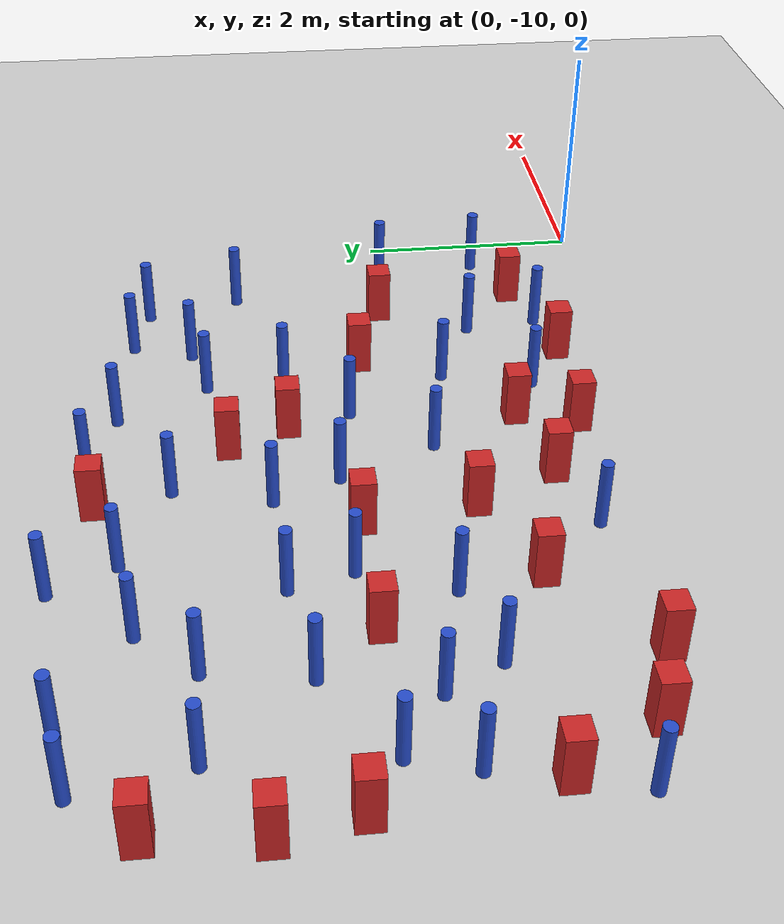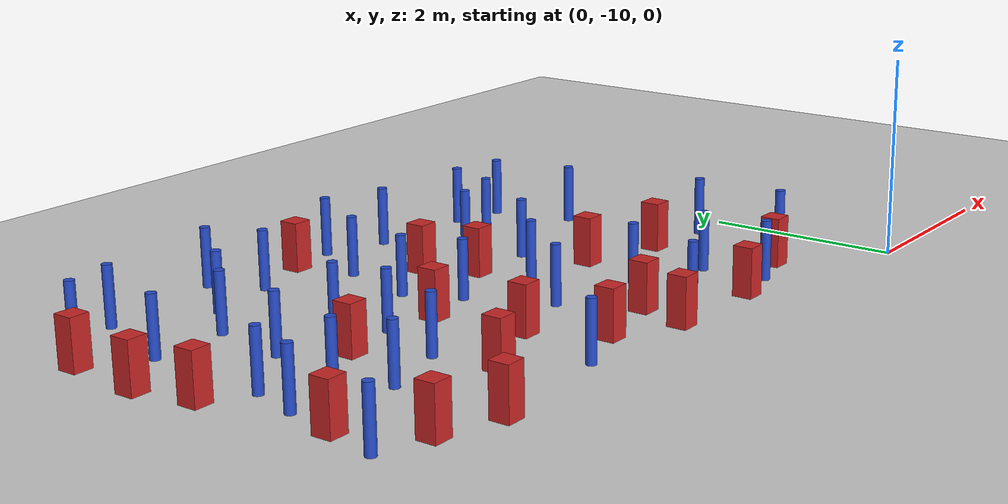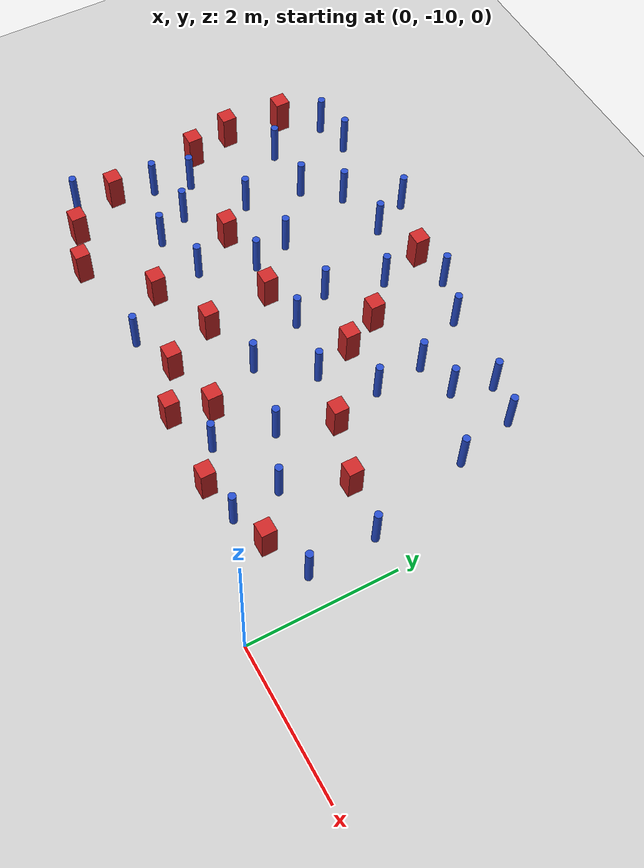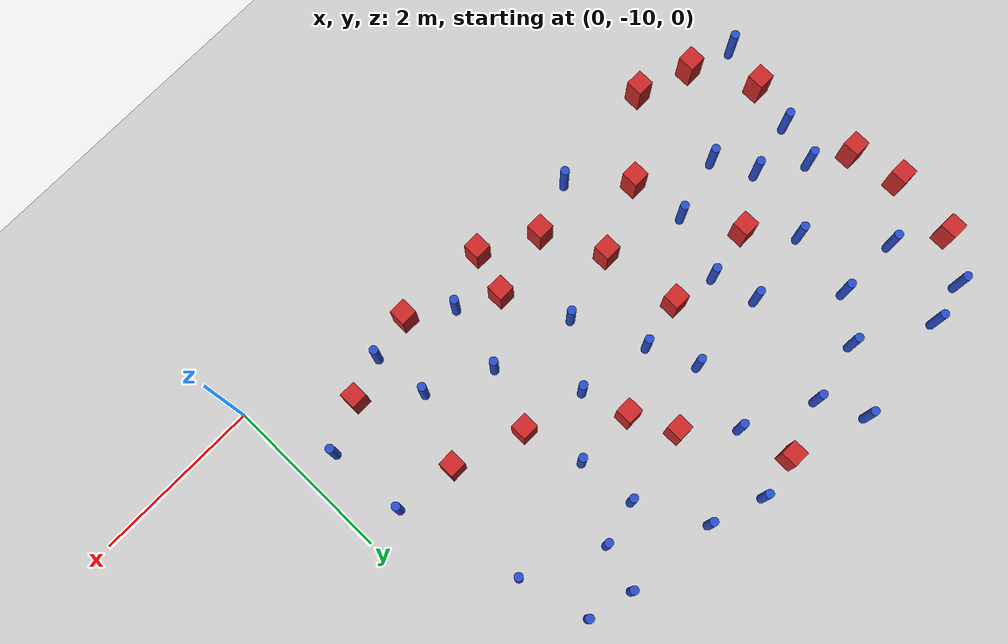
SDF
<sdf version="1.6">
 <world name="default">
  <model name="ground_plane">
   <static>1</static>
   <link name="link">
    <collision name="collision">
     <geometry><plane><normal>0 0 1</normal><size>100 100</size></plane></geometry>
     <surface><friction><ode><mu>100</mu><mu2>50</mu2></ode></friction></surface>
    </collision>
    <visual name="visual">
     <cast_shadows>0</cast_shadows>
     <geometry><plane><normal>0 0 1</normal><size>100 100</size></plane></geometry>
     <material>
      <ambient>1.0 1.0 1.0 1.0</ambient>
      <diffuse>0.8 0.8 0.8 1.0</diffuse>
      <specular>0.01 0.01 0.01 1.000000</specular>
     </material>
    </visual>
   </link>
  </model>
  <model name="pole_obstacle3">
   <static>true</static>
   <pose>-5.2181728807 -5.75392112804 7.38925637345e-09 -8.47170692796e-08 1.24976764786e-08 -1.74513093032e-07</pose>
   <link name="link">
    <pose>0 0 0.3 0 -0 0</pose>
    <inertial>
     <mass>1</mass>
     <inertia><ixx>0.145833</ixx><ixy>0</ixy><ixz>0</ixz><iyy>0.145833</iyy><iyz>0</iyz><izz>0.125</izz></inertia>
    </inertial>
    <collision name="collision">
     <geometry><cylinder><radius>0.05</radius><length>.6</length></cylinder></geometry>
    </collision>
    <visual name="visual">
     <geometry><cylinder><radius>0.05</radius><length>.6</length></cylinder></geometry>
     <material>
      <script><name>Gazebo/Blue</name><uri>file://media/materials/scripts/gazebo.material</uri></script>
     </material>
    </visual>
   </link>
  </model>
  <model name="square_post_obstacle14">
   <static>true</static>
   <pose>-3.72956606277 -9.08440619244 1.91545236811e-07 -7.35059704564e-06 1.12565212e-07 2.39332434364e-05</pose>
   <link name="link">
    <pose>0 0 0.25 0 -0 0</pose>
    <inertial>
     <mass>100</mass>
     <inertia>
      <ixx>0.166667</ixx>
      <ixy>0</ixy>
      <ixz>0</ixz>
      <iyy>0.166667</iyy>
      <iyz>0</iyz>
      <izz>0.166667</izz>
     </inertia>
    </inertial>
    <collision name="collision"><geometry><box><size>.2 .2 .5</size></box></geometry></collision>
    <visual name="visual">
     <geometry><box><size>.2 .2 .5</size></box></geometry>
     <material>
      <script><name>Gazebo/Red</name><uri>file://media/materials/scripts/gazebo.material</uri></script>
     </material>
    </visual>
   </link>
  </model>
  <model name="pole_obstacle9">
   <static>true</static>
   <pose>-1.06666744541 -5.77174144234 7.38925637345e-09 -8.47170692799e-08 1.24976765033e-08 -1.74513093018e-07</pose>
   <link name="link">
    <pose>0 0 0.3 0 -0 0</pose>
    <inertial>
     <mass>1</mass>
     <inertia><ixx>0.145833</ixx><ixy>0</ixy><ixz>0</ixz><iyy>0.145833</iyy><iyz>0</iyz><izz>0.125</izz></inertia>
    </inertial>
    <collision name="collision">
     <geometry><cylinder><radius>0.05</radius><length>.6</length></cylinder></geometry>
    </collision>
    <visual name="visual">
     <geometry><cylinder><radius>0.05</radius><length>.6</length></cylinder></geometry>
     <material>
      <script><name>Gazebo/Blue</name><uri>file://media/materials/scripts/gazebo.material</uri></script>
     </material>
    </visual>
   </link>
  </model>
  <model name="pole_obstacle19">
   <static>true</static>
   <pose>-1.47499445884 -9.38234611123 7.38925637345e-09 -8.47170692798e-08 1.24976764881e-08 -1.74513093027e-07</pose>
   <link name="link">
    <pose>0 0 0.3 0 -0 0</pose>
    <inertial>
     <mass>1</mass>
     <inertia><ixx>0.145833</ixx><ixy>0</ixy><ixz>0</ixz><iyy>0.145833</iyy><iyz>0</iyz><izz>0.125</izz></inertia>
    </inertial>
    <collision name="collision">
     <geometry><cylinder><radius>0.05</radius><length>.6</length></cylinder></geometry>
    </collision>
    <visual name="visual">
     <geometry><cylinder><radius>0.05</radius><length>.6</length></cylinder></geometry>
     <material>
      <script><name>Gazebo/Blue</name><uri>file://media/materials/scripts/gazebo.material</uri></script>
     </material>
    </visual>
   </link>
  </model>
  <model name="pole_obstacle27">
   <static>true</static>
   <pose>-6.37845777477 -6.20743006333 7.38925637345e-09 -8.47170692796e-08 1.24976764786e-08 -1.74513093032e-07</pose>
   <link name="link">
    <pose>0 0 0.3 0 -0 0</pose>
    <inertial>
     <mass>1</mass>
     <inertia><ixx>0.145833</ixx><ixy>0</ixy><ixz>0</ixz><iyy>0.145833</iyy><iyz>0</iyz><izz>0.125</izz></inertia>
    </inertial>
    <collision name="collision">
     <geometry><cylinder><radius>0.05</radius><length>.6</length></cylinder></geometry>
    </collision>
    <visual name="visual">
     <geometry><cylinder><radius>0.05</radius><length>.6</length></cylinder></geometry>
     <material>
      <script><name>Gazebo/Blue</name><uri>file://media/materials/scripts/gazebo.material</uri></script>
     </material>
    </visual>
   </link>
  </model>
  <model name="pole_obstacle28">
   <static>true</static>
   <pose>-0.473915851841 -8.02569858146 7.38925637345e-09 -8.47170692807e-08 1.24976765478e-08 -1.74513093005e-07</pose>
   <link name="link">
    <pose>0 0 0.3 0 -0 0</pose>
    <inertial>
     <mass>1</mass>
     <inertia><ixx>0.145833</ixx><ixy>0</ixy><ixz>0</ixz><iyy>0.145833</iyy><iyz>0</iyz><izz>0.125</izz></inertia>
    </inertial>
    <collision name="collision">
     <geometry><cylinder><radius>0.05</radius><length>.6</length></cylinder></geometry>
    </collision>
    <visual name="visual">
     <geometry><cylinder><radius>0.05</radius><length>.6</length></cylinder></geometry>
     <material>
      <script><name>Gazebo/Blue</name><uri>file://media/materials/scripts/gazebo.material</uri></script>
     </material>
    </visual>
   </link>
  </model>
  <model name="pole_obstacle36">
   <static>true</static>
   <pose>-4.71889049196 -7.36775100137 7.38925637345e-09 -8.47170692796e-08 1.24976764786e-08 -1.74513093032e-07</pose>
   <link name="link">
    <pose>0 0 0.3 0 -0 0</pose>
    <inertial>
     <mass>1</mass>
     <inertia><ixx>0.145833</ixx><ixy>0</ixy><ixz>0</ixz><iyy>0.145833</iyy><iyz>0</iyz><izz>0.125</izz></inertia>
    </inertial>
    <collision name="collision">
     <geometry><cylinder><radius>0.05</radius><length>.6</length></cylinder></geometry>
    </collision>
    <visual name="visual">
     <geometry><cylinder><radius>0.05</radius><length>.6</length></cylinder></geometry>
     <material>
      <script><name>Gazebo/Blue</name><uri>file://media/materials/scripts/gazebo.material</uri></script>
     </material>
    </visual>
   </link>
  </model>
  <model name="pole_obstacle40">
   <static>true</static>
   <pose>-4.35141248358 -9.31326337772 7.38925637345e-09 -8.471706928e-08 1.24976765081e-08 -1.74513093015e-07</pose>
   <link name="link">
    <pose>0 0 0.3 0 -0 0</pose>
    <inertial>
     <mass>1</mass>
     <inertia><ixx>0.145833</ixx><ixy>0</ixy><ixz>0</ixz><iyy>0.145833</iyy><iyz>0</iyz><izz>0.125</izz></inertia>
    </inertial>
    <collision name="collision">
     <geometry><cylinder><radius>0.05</radius><length>.6</length></cylinder></geometry>
    </collision>
    <visual name="visual">
     <geometry><cylinder><radius>0.05</radius><length>.6</length></cylinder></geometry>
     <material>
      <script><name>Gazebo/Blue</name><uri>file://media/materials/scripts/gazebo.material</uri></script>
     </material>
    </visual>
   </link>
  </model>
  <model name="square_post_obstacle40">
   <static>true</static>
   <pose>-5.70633287363 -9.45097368055 1.91545236811e-07 -7.35059704564e-06 1.12565212e-07 2.39332434364e-05</pose>
   <link name="link">
    <pose>0 0 0.25 0 -0 0</pose>
    <inertial>
     <mass>100</mass>
     <inertia>
      <ixx>0.166667</ixx>
      <ixy>0</ixy>
      <ixz>0</ixz>
      <iyy>0.166667</iyy>
      <iyz>0</iyz>
      <izz>0.166667</izz>
     </inertia>
    </inertial>
    <collision name="collision"><geometry><box><size>.2 .2 .5</size></box></geometry></collision>
    <visual name="visual">
     <geometry><box><size>.2 .2 .5</size></box></geometry>
     <material>
      <script><name>Gazebo/Red</name><uri>file://media/materials/scripts/gazebo.material</uri></script>
     </material>
    </visual>
   </link>
  </model>
  <model name="pole_obstacle44">
   <static>true</static>
   <pose>-2.21537043636 -6.97621518955 7.38925637345e-09 -8.47170692798e-08 1.24976765033e-08 -1.74513093019e-07</pose>
   <link name="link">
    <pose>0 0 0.3 0 -0 0</pose>
    <inertial>
     <mass>1</mass>
     <inertia><ixx>0.145833</ixx><ixy>0</ixy><ixz>0</ixz><iyy>0.145833</iyy><iyz>0</iyz><izz>0.125</izz></inertia>
    </inertial>
    <collision name="collision">
     <geometry><cylinder><radius>0.05</radius><length>.6</length></cylinder></geometry>
    </collision>
    <visual name="visual">
     <geometry><cylinder><radius>0.05</radius><length>.6</length></cylinder></geometry>
     <material>
      <script><name>Gazebo/Blue</name><uri>file://media/materials/scripts/gazebo.material</uri></script>
     </material>
    </visual>
   </link>
  </model>
  <model name="square_post_obstacle47">
   <static>true</static>
   <pose>-1.20645597106 -7.93192119043 1.91545236811e-07 -7.35059704564e-06 1.12565212e-07 2.39332434364e-05</pose>
   <link name="link">
    <pose>0 0 0.25 0 -0 0</pose>
    <inertial>
     <mass>100</mass>
     <inertia>
      <ixx>0.166667</ixx>
      <ixy>0</ixy>
      <ixz>0</ixz>
      <iyy>0.166667</iyy>
      <iyz>0</iyz>
      <izz>0.166667</izz>
     </inertia>
    </inertial>
    <collision name="collision"><geometry><box><size>.2 .2 .5</size></box></geometry></collision>
    <visual name="visual">
     <geometry><box><size>.2 .2 .5</size></box></geometry>
     <material>
      <script><name>Gazebo/Red</name><uri>file://media/materials/scripts/gazebo.material</uri></script>
     </material>
    </visual>
   </link>
  </model>
  <model name="pole_obstacle48">
   <static>true</static>
   <pose>-5.73225735683 -7.00149802437 7.38925637345e-09 -8.47170692796e-08 1.24976764786e-08 -1.74513093032e-07</pose>
   <link name="link">
    <pose>0 0 0.3 0 -0 0</pose>
    <inertial>
     <mass>1</mass>
     <inertia><ixx>0.145833</ixx><ixy>0</ixy><ixz>0</ixz><iyy>0.145833</iyy><iyz>0</iyz><izz>0.125</izz></inertia>
    </inertial>
    <collision name="collision">
     <geometry><cylinder><radius>0.05</radius><length>.6</length></cylinder></geometry>
    </collision>
    <visual name="visual">
     <geometry><cylinder><radius>0.05</radius><length>.6</length></cylinder></geometry>
     <material>
      <script><name>Gazebo/Blue</name><uri>file://media/materials/scripts/gazebo.material</uri></script>
     </material>
    </visual>
   </link>
  </model>
  <model name="pole_obstacle51">
   <static>true</static>
   <pose>-3.6724709226 -6.0033834422 7.38925637345e-09 -8.47170692798e-08 1.24976765033e-08 -1.74513093019e-07</pose>
   <link name="link">
    <pose>0 0 0.3 0 -0 0</pose>
    <inertial>
     <mass>1</mass>
     <inertia><ixx>0.145833</ixx><ixy>0</ixy><ixz>0</ixz><iyy>0.145833</iyy><iyz>0</iyz><izz>0.125</izz></inertia>
    </inertial>
    <collision name="collision">
     <geometry><cylinder><radius>0.05</radius><length>.6</length></cylinder></geometry>
    </collision>
    <visual name="visual">
     <geometry><cylinder><radius>0.05</radius><length>.6</length></cylinder></geometry>
     <material>
      <script><name>Gazebo/Blue</name><uri>file://media/materials/scripts/gazebo.material</uri></script>
     </material>
    </visual>
   </link>
  </model>
  <model name="square_post_obstacle60">
   <static>true</static>
   <pose>-6.32672737262 -9.23531700133 1.91545236811e-07 -7.35059704564e-06 1.12565212e-07 2.39332434364e-05</pose>
   <link name="link">
    <pose>0 0 0.25 0 -0 0</pose>
    <inertial>
     <mass>100</mass>
     <inertia>
      <ixx>0.166667</ixx>
      <ixy>0</ixy>
      <ixz>0</ixz>
      <iyy>0.166667</iyy>
      <iyz>0</iyz>
      <izz>0.166667</izz>
     </inertia>
    </inertial>
    <collision name="collision"><geometry><box><size>.2 .2 .5</size></box></geometry></collision>
    <visual name="visual">
     <geometry><box><size>.2 .2 .5</size></box></geometry>
     <material>
      <script><name>Gazebo/Red</name><uri>file://media/materials/scripts/gazebo.material</uri></script>
     </material>
    </visual>
   </link>
  </model>
  <model name="square_post_obstacle62">
   <static>true</static>
   <pose>-4.07372849763 -8.39395617261 1.91545236811e-07 -7.35059704564e-06 1.12565212e-07 2.39332434364e-05</pose>
   <link name="link">
    <pose>0 0 0.25 0 -0 0</pose>
    <inertial>
     <mass>100</mass>
     <inertia>
      <ixx>0.166667</ixx>
      <ixy>0</ixy>
      <ixz>0</ixz>
      <iyy>0.166667</iyy>
      <iyz>0</iyz>
      <izz>0.166667</izz>
     </inertia>
    </inertial>
    <collision name="collision"><geometry><box><size>.2 .2 .5</size></box></geometry></collision>
    <visual name="visual">
     <geometry><box><size>.2 .2 .5</size></box></geometry>
     <material>
      <script><name>Gazebo/Red</name><uri>file://media/materials/scripts/gazebo.material</uri></script>
     </material>
    </visual>
   </link>
  </model>
  <model name="square_post_obstacle70">
   <static>true</static>
   <pose>-1.99972800942 -9.47723953722 1.91545236811e-07 -7.35059704564e-06 1.12565212e-07 2.39332434364e-05</pose>
   <link name="link">
    <pose>0 0 0.25 0 -0 0</pose>
    <inertial>
     <mass>100</mass>
     <inertia>
      <ixx>0.166667</ixx>
      <ixy>0</ixy>
      <ixz>0</ixz>
      <iyy>0.166667</iyy>
      <iyz>0</iyz>
      <izz>0.166667</izz>
     </inertia>
    </inertial>
    <collision name="collision"><geometry><box><size>.2 .2 .5</size></box></geometry></collision>
    <visual name="visual">
     <geometry><box><size>.2 .2 .5</size></box></geometry>
     <material>
      <script><name>Gazebo/Red</name><uri>file://media/materials/scripts/gazebo.material</uri></script>
     </material>
    </visual>
   </link>
  </model>
  <model name="square_post_obstacle71">
   <static>true</static>
   <pose>-6.71399028017 -8.53326475525 1.91545236811e-07 -7.35059704564e-06 1.12565212e-07 2.39332434364e-05</pose>
   <link name="link">
    <pose>0 0 0.25 0 -0 0</pose>
    <inertial>
     <mass>100</mass>
     <inertia>
      <ixx>0.166667</ixx>
      <ixy>0</ixy>
      <ixz>0</ixz>
      <iyy>0.166667</iyy>
      <iyz>0</iyz>
      <izz>0.166667</izz>
     </inertia>
    </inertial>
    <collision name="collision"><geometry><box><size>.2 .2 .5</size></box></geometry></collision>
    <visual name="visual">
     <geometry><box><size>.2 .2 .5</size></box></geometry>
     <material>
      <script><name>Gazebo/Red</name><uri>file://media/materials/scripts/gazebo.material</uri></script>
     </material>
    </visual>
   </link>
  </model>
  <model name="pole_obstacle70">
   <static>true</static>
   <pose>-1.76239998786 -6.16572015953 7.38925637345e-09 -8.47170692799e-08 1.24976765033e-08 -1.74513093018e-07</pose>
   <link name="link">
    <pose>0 0 0.3 0 -0 0</pose>
    <inertial>
     <mass>1</mass>
     <inertia><ixx>0.145833</ixx><ixy>0</ixy><ixz>0</ixz><iyy>0.145833</iyy><iyz>0</iyz><izz>0.125</izz></inertia>
    </inertial>
    <collision name="collision">
     <geometry><cylinder><radius>0.05</radius><length>.6</length></cylinder></geometry>
    </collision>
    <visual name="visual">
     <geometry><cylinder><radius>0.05</radius><length>.6</length></cylinder></geometry>
     <material>
      <script><name>Gazebo/Blue</name><uri>file://media/materials/scripts/gazebo.material</uri></script>
     </material>
    </visual>
   </link>
  </model>
  <model name="pole_obstacle71">
   <static>true</static>
   <pose>-6.54849011931 -5.36656019022 7.38925637345e-09 -8.47170692796e-08 1.24976764786e-08 -1.74513093032e-07</pose>
   <link name="link">
    <pose>0 0 0.3 0 -0 0</pose>
    <inertial>
     <mass>1</mass>
     <inertia><ixx>0.145833</ixx><ixy>0</ixy><ixz>0</ixz><iyy>0.145833</iyy><iyz>0</iyz><izz>0.125</izz></inertia>
    </inertial>
    <collision name="collision">
     <geometry><cylinder><radius>0.05</radius><length>.6</length></cylinder></geometry>
    </collision>
    <visual name="visual">
     <geometry><cylinder><radius>0.05</radius><length>.6</length></cylinder></geometry>
     <material>
      <script><name>Gazebo/Blue</name><uri>file://media/materials/scripts/gazebo.material</uri></script>
     </material>
    </visual>
   </link>
  </model>
  <model name="pole_obstacle74">
   <static>true</static>
   <pose>-3.6305509404 -7.35341886439 7.38925637345e-09 -8.47170692798e-08 1.24976765033e-08 -1.74513093019e-07</pose>
   <link name="link">
    <pose>0 0 0.3 0 -0 0</pose>
    <inertial>
     <mass>1</mass>
     <inertia><ixx>0.145833</ixx><ixy>0</ixy><ixz>0</ixz><iyy>0.145833</iyy><iyz>0</iyz><izz>0.125</izz></inertia>
    </inertial>
    <collision name="collision">
     <geometry><cylinder><radius>0.05</radius><length>.6</length></cylinder></geometry>
    </collision>
    <visual name="visual">
     <geometry><cylinder><radius>0.05</radius><length>.6</length></cylinder></geometry>
     <material>
      <script><name>Gazebo/Blue</name><uri>file://media/materials/scripts/gazebo.material</uri></script>
     </material>
    </visual>
   </link>
  </model>
  <model name="pole_obstacle85">
   <static>true</static>
   <pose>-6.05687581724 -5.26715599545 7.38925637345e-09 -8.47170692796e-08 1.24976764786e-08 -1.74513093032e-07</pose>
   <link name="link">
    <pose>0 0 0.3 0 -0 0</pose>
    <inertial>
     <mass>1</mass>
     <inertia><ixx>0.145833</ixx><ixy>0</ixy><ixz>0</ixz><iyy>0.145833</iyy><iyz>0</iyz><izz>0.125</izz></inertia>
    </inertial>
    <collision name="collision">
     <geometry><cylinder><radius>0.05</radius><length>.6</length></cylinder></geometry>
    </collision>
    <visual name="visual">
     <geometry><cylinder><radius>0.05</radius><length>.6</length></cylinder></geometry>
     <material>
      <script><name>Gazebo/Blue</name><uri>file://media/materials/scripts/gazebo.material</uri></script>
     </material>
    </visual>
   </link>
  </model>
  <model name="pole_obstacle87">
   <static>true</static>
   <pose>-6.44645030917 -7.50295881566 7.38925637345e-09 -8.47170692796e-08 1.24976764786e-08 -1.74513093032e-07</pose>
   <link name="link">
    <pose>0 0 0.3 0 -0 0</pose>
    <inertial>
     <mass>1</mass>
     <inertia><ixx>0.145833</ixx><ixy>0</ixy><ixz>0</ixz><iyy>0.145833</iyy><iyz>0</iyz><izz>0.125</izz></inertia>
    </inertial>
    <collision name="collision">
     <geometry><cylinder><radius>0.05</radius><length>.6</length></cylinder></geometry>
    </collision>
    <visual name="visual">
     <geometry><cylinder><radius>0.05</radius><length>.6</length></cylinder></geometry>
     <material>
      <script><name>Gazebo/Blue</name><uri>file://media/materials/scripts/gazebo.material</uri></script>
     </material>
    </visual>
   </link>
  </model>
  <model name="pole_obstacle97">
   <static>true</static>
   <pose>-2.2814286215 -6.2987074952 7.38925637345e-09 -8.47170692798e-08 1.24976765033e-08 -1.74513093019e-07</pose>
   <link name="link">
    <pose>0 0 0.3 0 -0 0</pose>
    <inertial>
     <mass>1</mass>
     <inertia><ixx>0.145833</ixx><ixy>0</ixy><ixz>0</ixz><iyy>0.145833</iyy><iyz>0</iyz><izz>0.125</izz></inertia>
    </inertial>
    <collision name="collision">
     <geometry><cylinder><radius>0.05</radius><length>.6</length></cylinder></geometry>
    </collision>
    <visual name="visual">
     <geometry><cylinder><radius>0.05</radius><length>.6</length></cylinder></geometry>
     <material>
      <script><name>Gazebo/Blue</name><uri>file://media/materials/scripts/gazebo.material</uri></script>
     </material>
    </visual>
   </link>
  </model>
  <model name="pole_obstacle107">
   <static>true</static>
   <pose>-2.77464644089 -7.51132462209 7.38925637345e-09 -8.47170692798e-08 1.24976765033e-08 -1.74513093019e-07</pose>
   <link name="link">
    <pose>0 0 0.3 0 -0 0</pose>
    <inertial>
     <mass>1</mass>
     <inertia><ixx>0.145833</ixx><ixy>0</ixy><ixz>0</ixz><iyy>0.145833</iyy><iyz>0</iyz><izz>0.125</izz></inertia>
    </inertial>
    <collision name="collision">
     <geometry><cylinder><radius>0.05</radius><length>.6</length></cylinder></geometry>
    </collision>
    <visual name="visual">
     <geometry><cylinder><radius>0.05</radius><length>.6</length></cylinder></geometry>
     <material>
      <script><name>Gazebo/Blue</name><uri>file://media/materials/scripts/gazebo.material</uri></script>
     </material>
    </visual>
   </link>
  </model>
  <model name="pole_obstacle112">
   <static>true</static>
   <pose>-3.86847735527 -6.8024232727 7.38925637345e-09 -8.47170692794e-08 1.24976764468e-08 -1.7451309304e-07</pose>
   <link name="link">
    <pose>0 0 0.3 0 -0 0</pose>
    <inertial>
     <mass>1</mass>
     <inertia><ixx>0.145833</ixx><ixy>0</ixy><ixz>0</ixz><iyy>0.145833</iyy><iyz>0</iyz><izz>0.125</izz></inertia>
    </inertial>
    <collision name="collision">
     <geometry><cylinder><radius>0.05</radius><length>.6</length></cylinder></geometry>
    </collision>
    <visual name="visual">
     <geometry><cylinder><radius>0.05</radius><length>.6</length></cylinder></geometry>
     <material>
      <script><name>Gazebo/Blue</name><uri>file://media/materials/scripts/gazebo.material</uri></script>
     </material>
    </visual>
   </link>
  </model>
  <model name="square_post_obstacle99">
   <static>true</static>
   <pose>-3.18334412269 -6.46820920353 1.91545236811e-07 -7.35059704564e-06 1.12565212e-07 2.39332434364e-05</pose>
   <link name="link">
    <pose>0 0 0.25 0 -0 0</pose>
    <inertial>
     <mass>100</mass>
     <inertia>
      <ixx>0.166667</ixx>
      <ixy>0</ixy>
      <ixz>0</ixz>
      <iyy>0.166667</iyy>
      <iyz>0</iyz>
      <izz>0.166667</izz>
     </inertia>
    </inertial>
    <collision name="collision"><geometry><box><size>.2 .2 .5</size></box></geometry></collision>
    <visual name="visual">
     <geometry><box><size>.2 .2 .5</size></box></geometry>
     <material>
      <script><name>Gazebo/Red</name><uri>file://media/materials/scripts/gazebo.material</uri></script>
     </material>
    </visual>
   </link>
  </model>
  <model name="square_post_obstacle110">
   <static>true</static>
   <pose>-3.83531357498 -5.40161347961 1.91545236811e-07 -7.35059704564e-06 1.12565212e-07 2.39332434364e-05</pose>
   <link name="link">
    <pose>0 0 0.25 0 -0 0</pose>
    <inertial>
     <mass>100</mass>
     <inertia>
      <ixx>0.166667</ixx>
      <ixy>0</ixy>
      <ixz>0</ixz>
      <iyy>0.166667</iyy>
      <iyz>0</iyz>
      <izz>0.166667</izz>
     </inertia>
    </inertial>
    <collision name="collision"><geometry><box><size>.2 .2 .5</size></box></geometry></collision>
    <visual name="visual">
     <geometry><box><size>.2 .2 .5</size></box></geometry>
     <material>
      <script><name>Gazebo/Red</name><uri>file://media/materials/scripts/gazebo.material</uri></script>
     </material>
    </visual>
   </link>
  </model>
  <model name="pole_obstacle121">
   <static>true</static>
   <pose>-1.59590494451 -5.64186931003 7.38925637345e-09 -8.47170692799e-08 1.24976765033e-08 -1.74513093018e-07</pose>
   <link name="link">
    <pose>0 0 0.3 0 -0 0</pose>
    <inertial>
     <mass>1</mass>
     <inertia><ixx>0.145833</ixx><ixy>0</ixy><ixz>0</ixz><iyy>0.145833</iyy><iyz>0</iyz><izz>0.125</izz></inertia>
    </inertial>
    <collision name="collision">
     <geometry><cylinder><radius>0.05</radius><length>.6</length></cylinder></geometry>
    </collision>
    <visual name="visual">
     <geometry><cylinder><radius>0.05</radius><length>.6</length></cylinder></geometry>
     <material>
      <script><name>Gazebo/Blue</name><uri>file://media/materials/scripts/gazebo.material</uri></script>
     </material>
    </visual>
   </link>
  </model>
  <model name="pole_obstacle130">
   <static>true</static>
   <pose>-4.98569387501 -8.10034063259 7.38925637345e-09 -8.471706928e-08 1.24976765081e-08 -1.74513093015e-07</pose>
   <link name="link">
    <pose>0 0 0.3 0 -0 0</pose>
    <inertial>
     <mass>1</mass>
     <inertia><ixx>0.145833</ixx><ixy>0</ixy><ixz>0</ixz><iyy>0.145833</iyy><iyz>0</iyz><izz>0.125</izz></inertia>
    </inertial>
    <collision name="collision">
     <geometry><cylinder><radius>0.05</radius><length>.6</length></cylinder></geometry>
    </collision>
    <visual name="visual">
     <geometry><cylinder><radius>0.05</radius><length>.6</length></cylinder></geometry>
     <material>
      <script><name>Gazebo/Blue</name><uri>file://media/materials/scripts/gazebo.material</uri></script>
     </material>
    </visual>
   </link>
  </model>
  <model name="pole_obstacle136">
   <static>true</static>
   <pose>-5.70253620694 -8.30143549293 7.38925637345e-09 -8.471706928e-08 1.24976765081e-08 -1.74513093015e-07</pose>
   <link name="link">
    <pose>0 0 0.3 0 -0 0</pose>
    <inertial>
     <mass>1</mass>
     <inertia><ixx>0.145833</ixx><ixy>0</ixy><ixz>0</ixz><iyy>0.145833</iyy><iyz>0</iyz><izz>0.125</izz></inertia>
    </inertial>
    <collision name="collision">
     <geometry><cylinder><radius>0.05</radius><length>.6</length></cylinder></geometry>
    </collision>
    <visual name="visual">
     <geometry><cylinder><radius>0.05</radius><length>.6</length></cylinder></geometry>
     <material>
      <script><name>Gazebo/Blue</name><uri>file://media/materials/scripts/gazebo.material</uri></script>
     </material>
    </visual>
   </link>
  </model>
  <model name="pole_obstacle137">
   <static>true</static>
   <pose>-2.68920414936 -5.53206549198 7.38925637345e-09 -8.47170692798e-08 1.24976765033e-08 -1.74513093019e-07</pose>
   <link name="link">
    <pose>0 0 0.3 0 -0 0</pose>
    <inertial>
     <mass>1</mass>
     <inertia><ixx>0.145833</ixx><ixy>0</ixy><ixz>0</ixz><iyy>0.145833</iyy><iyz>0</iyz><izz>0.125</izz></inertia>
    </inertial>
    <collision name="collision">
     <geometry><cylinder><radius>0.05</radius><length>.6</length></cylinder></geometry>
    </collision>
    <visual name="visual">
     <geometry><cylinder><radius>0.05</radius><length>.6</length></cylinder></geometry>
     <material>
      <script><name>Gazebo/Blue</name><uri>file://media/materials/scripts/gazebo.material</uri></script>
     </material>
    </visual>
   </link>
  </model>
  <model name="pole_obstacle140">
   <static>true</static>
   <pose>-0.411344213178 -8.9557963792 7.38925637345e-09 -8.47170692796e-08 1.24976764724e-08 -1.74513093036e-07</pose>
   <link name="link">
    <pose>0 0 0.3 0 -0 0</pose>
    <inertial>
     <mass>1</mass>
     <inertia><ixx>0.145833</ixx><ixy>0</ixy><ixz>0</ixz><iyy>0.145833</iyy><iyz>0</iyz><izz>0.125</izz></inertia>
    </inertial>
    <collision name="collision">
     <geometry><cylinder><radius>0.05</radius><length>.6</length></cylinder></geometry>
    </collision>
    <visual name="visual">
     <geometry><cylinder><radius>0.05</radius><length>.6</length></cylinder></geometry>
     <material>
      <script><name>Gazebo/Blue</name><uri>file://media/materials/scripts/gazebo.material</uri></script>
     </material>
    </visual>
   </link>
  </model>
  <model name="pole_obstacle144">
   <static>true</static>
   <pose>-3.27386940238 -8.16769822277 7.38925637345e-09 -8.47170692799e-08 1.24976765012e-08 -1.74513093021e-07</pose>
   <link name="link">
    <pose>0 0 0.3 0 -0 0</pose>
    <inertial>
     <mass>1</mass>
     <inertia><ixx>0.145833</ixx><ixy>0</ixy><ixz>0</ixz><iyy>0.145833</iyy><iyz>0</iyz><izz>0.125</izz></inertia>
    </inertial>
    <collision name="collision">
     <geometry><cylinder><radius>0.05</radius><length>.6</length></cylinder></geometry>
    </collision>
    <visual name="visual">
     <geometry><cylinder><radius>0.05</radius><length>.6</length></cylinder></geometry>
     <material>
      <script><name>Gazebo/Blue</name><uri>file://media/materials/scripts/gazebo.material</uri></script>
     </material>
    </visual>
   </link>
  </model>
  <model name="square_post_obstacle139">
   <static>true</static>
   <pose>-4.89643182732 -8.75076623899 1.91545236811e-07 -7.35059704564e-06 1.12565212e-07 2.39332434364e-05</pose>
   <link name="link">
    <pose>0 0 0.25 0 -0 0</pose>
    <inertial>
     <mass>100</mass>
     <inertia>
      <ixx>0.166667</ixx>
      <ixy>0</ixy>
      <ixz>0</ixz>
      <iyy>0.166667</iyy>
      <iyz>0</iyz>
      <izz>0.166667</izz>
     </inertia>
    </inertial>
    <collision name="collision"><geometry><box><size>.2 .2 .5</size></box></geometry></collision>
    <visual name="visual">
     <geometry><box><size>.2 .2 .5</size></box></geometry>
     <material>
      <script><name>Gazebo/Red</name><uri>file://media/materials/scripts/gazebo.material</uri></script>
     </material>
    </visual>
   </link>
  </model>
  <model name="pole_obstacle153">
   <static>true</static>
   <pose>-2.46953455139 -9.15992849189 7.38925637345e-09 -8.47170692793e-08 1.24976764408e-08 -1.74513093041e-07</pose>
   <link name="link">
    <pose>0 0 0.3 0 -0 0</pose>
    <inertial>
     <mass>1</mass>
     <inertia><ixx>0.145833</ixx><ixy>0</ixy><ixz>0</ixz><iyy>0.145833</iyy><iyz>0</iyz><izz>0.125</izz></inertia>
    </inertial>
    <collision name="collision">
     <geometry><cylinder><radius>0.05</radius><length>.6</length></cylinder></geometry>
    </collision>
    <visual name="visual">
     <geometry><cylinder><radius>0.05</radius><length>.6</length></cylinder></geometry>
     <material>
      <script><name>Gazebo/Blue</name><uri>file://media/materials/scripts/gazebo.material</uri></script>
     </material>
    </visual>
   </link>
  </model>
  <model name="pole_obstacle156">
   <static>true</static>
   <pose>-0.855322409636 -6.59473144139 7.38925637345e-09 -8.471706928e-08 1.24976765086e-08 -1.74513093015e-07</pose>
   <link name="link">
    <pose>0 0 0.3 0 -0 0</pose>
    <inertial>
     <mass>1</mass>
     <inertia><ixx>0.145833</ixx><ixy>0</ixy><ixz>0</ixz><iyy>0.145833</iyy><iyz>0</iyz><izz>0.125</izz></inertia>
    </inertial>
    <collision name="collision">
     <geometry><cylinder><radius>0.05</radius><length>.6</length></cylinder></geometry>
    </collision>
    <visual name="visual">
     <geometry><cylinder><radius>0.05</radius><length>.6</length></cylinder></geometry>
     <material>
      <script><name>Gazebo/Blue</name><uri>file://media/materials/scripts/gazebo.material</uri></script>
     </material>
    </visual>
   </link>
  </model>
  <model name="square_post_obstacle147">
   <static>true</static>
   <pose>-3.08685456968 -9.42612515638 1.91545236811e-07 -7.35059704564e-06 1.12565212e-07 2.39332434364e-05</pose>
   <link name="link">
    <pose>0 0 0.25 0 -0 0</pose>
    <inertial>
     <mass>100</mass>
     <inertia>
      <ixx>0.166667</ixx>
      <ixy>0</ixy>
      <ixz>0</ixz>
      <iyy>0.166667</iyy>
      <iyz>0</iyz>
      <izz>0.166667</izz>
     </inertia>
    </inertial>
    <collision name="collision"><geometry><box><size>.2 .2 .5</size></box></geometry></collision>
    <visual name="visual">
     <geometry><box><size>.2 .2 .5</size></box></geometry>
     <material>
      <script><name>Gazebo/Red</name><uri>file://media/materials/scripts/gazebo.material</uri></script>
     </material>
    </visual>
   </link>
  </model>
  <model name="pole_obstacle158">
   <static>true</static>
   <pose>-5.9455809642 -7.84957870105 7.38925637345e-09 -8.47170692796e-08 1.24976764786e-08 -1.74513093032e-07</pose>
   <link name="link">
    <pose>0 0 0.3 0 -0 0</pose>
    <inertial>
     <mass>1</mass>
     <inertia><ixx>0.145833</ixx><ixy>0</ixy><ixz>0</ixz><iyy>0.145833</iyy><iyz>0</iyz><izz>0.125</izz></inertia>
    </inertial>
    <collision name="collision">
     <geometry><cylinder><radius>0.05</radius><length>.6</length></cylinder></geometry>
    </collision>
    <visual name="visual">
     <geometry><cylinder><radius>0.05</radius><length>.6</length></cylinder></geometry>
     <material>
      <script><name>Gazebo/Blue</name><uri>file://media/materials/scripts/gazebo.material</uri></script>
     </material>
    </visual>
   </link>
  </model>
  <model name="pole_obstacle159">
   <static>true</static>
   <pose>-4.74170726982 -5.10213755858 7.38925637345e-09 -8.47170692796e-08 1.24976764786e-08 -1.74513093032e-07</pose>
   <link name="link">
    <pose>0 0 0.3 0 -0 0</pose>
    <inertial>
     <mass>1</mass>
     <inertia><ixx>0.145833</ixx><ixy>0</ixy><ixz>0</ixz><iyy>0.145833</iyy><iyz>0</iyz><izz>0.125</izz></inertia>
    </inertial>
    <collision name="collision">
     <geometry><cylinder><radius>0.05</radius><length>.6</length></cylinder></geometry>
    </collision>
    <visual name="visual">
     <geometry><cylinder><radius>0.05</radius><length>.6</length></cylinder></geometry>
     <material>
      <script><name>Gazebo/Blue</name><uri>file://media/materials/scripts/gazebo.material</uri></script>
     </material>
    </visual>
   </link>
  </model>
  <model name="pole_obstacle169">
   <static>true</static>
   <pose>-6.58947652483 -7.9965215759 7.38925637345e-09 -8.47170692796e-08 1.24976764752e-08 -1.74513093035e-07</pose>
   <link name="link">
    <pose>0 0 0.3 0 -0 0</pose>
    <inertial>
     <mass>1</mass>
     <inertia><ixx>0.145833</ixx><ixy>0</ixy><ixz>0</ixz><iyy>0.145833</iyy><iyz>0</iyz><izz>0.125</izz></inertia>
    </inertial>
    <collision name="collision">
     <geometry><cylinder><radius>0.05</radius><length>.6</length></cylinder></geometry>
    </collision>
    <visual name="visual">
     <geometry><cylinder><radius>0.05</radius><length>.6</length></cylinder></geometry>
     <material>
      <script><name>Gazebo/Blue</name><uri>file://media/materials/scripts/gazebo.material</uri></script>
     </material>
    </visual>
   </link>
  </model>
  <model name="pole_obstacle172">
   <static>true</static>
   <pose>-4.85944396858 -6.85538293719 7.38925637345e-09 -8.47170692796e-08 1.24976764786e-08 -1.74513093032e-07</pose>
   <link name="link">
    <pose>0 0 0.3 0 -0 0</pose>
    <inertial>
     <mass>1</mass>
     <inertia><ixx>0.145833</ixx><ixy>0</ixy><ixz>0</ixz><iyy>0.145833</iyy><iyz>0</iyz><izz>0.125</izz></inertia>
    </inertial>
    <collision name="collision">
     <geometry><cylinder><radius>0.05</radius><length>.6</length></cylinder></geometry>
    </collision>
    <visual name="visual">
     <geometry><cylinder><radius>0.05</radius><length>.6</length></cylinder></geometry>
     <material>
      <script><name>Gazebo/Blue</name><uri>file://media/materials/scripts/gazebo.material</uri></script>
     </material>
    </visual>
   </link>
  </model>
  <model name="square_post_obstacle165">
   <static>true</static>
   <pose>-2.93289562313 -8.91436298886 1.91545236811e-07 -7.35059704564e-06 1.12565212e-07 2.39332434364e-05</pose>
   <link name="link">
    <pose>0 0 0.25 0 -0 0</pose>
    <inertial>
     <mass>100</mass>
     <inertia>
      <ixx>0.166667</ixx>
      <ixy>0</ixy>
      <ixz>0</ixz>
      <iyy>0.166667</iyy>
      <iyz>0</iyz>
      <izz>0.166667</izz>
     </inertia>
    </inertial>
    <collision name="collision"><geometry><box><size>.2 .2 .5</size></box></geometry></collision>
    <visual name="visual">
     <geometry><box><size>.2 .2 .5</size></box></geometry>
     <material>
      <script><name>Gazebo/Red</name><uri>file://media/materials/scripts/gazebo.material</uri></script>
     </material>
    </visual>
   </link>
  </model>
  <model name="square_post_obstacle168">
   <static>true</static>
   <pose>-2.03055218576 -7.66301703136 1.91545236811e-07 -7.35059704564e-06 1.12565212e-07 2.39332434364e-05</pose>
   <link name="link">
    <pose>0 0 0.25 0 -0 0</pose>
    <inertial>
     <mass>100</mass>
     <inertia>
      <ixx>0.166667</ixx>
      <ixy>0</ixy>
      <ixz>0</ixz>
      <iyy>0.166667</iyy>
      <iyz>0</iyz>
      <izz>0.166667</izz>
     </inertia>
    </inertial>
    <collision name="collision"><geometry><box><size>.2 .2 .5</size></box></geometry></collision>
    <visual name="visual">
     <geometry><box><size>.2 .2 .5</size></box></geometry>
     <material>
      <script><name>Gazebo/Red</name><uri>file://media/materials/scripts/gazebo.material</uri></script>
     </material>
    </visual>
   </link>
  </model>
  <model name="pole_obstacle187">
   <static>true</static>
   <pose>-2.28814341892 -8.37787191466 7.38925637345e-09 -8.47170692793e-08 1.24976764408e-08 -1.74513093041e-07</pose>
   <link name="link">
    <pose>0 0 0.3 0 -0 0</pose>
    <inertial>
     <mass>1</mass>
     <inertia><ixx>0.145833</ixx><ixy>0</ixy><ixz>0</ixz><iyy>0.145833</iyy><iyz>0</iyz><izz>0.125</izz></inertia>
    </inertial>
    <collision name="collision">
     <geometry><cylinder><radius>0.05</radius><length>.6</length></cylinder></geometry>
    </collision>
    <visual name="visual">
     <geometry><cylinder><radius>0.05</radius><length>.6</length></cylinder></geometry>
     <material>
      <script><name>Gazebo/Blue</name><uri>file://media/materials/scripts/gazebo.material</uri></script>
     </material>
    </visual>
   </link>
  </model>
  <model name="square_post_obstacle189">
   <static>true</static>
   <pose>-4.20442292676 -7.47428301501 1.91545236811e-07 -7.35059704564e-06 1.12565212e-07 2.39332434364e-05</pose>
   <link name="link">
    <pose>0 0 0.25 0 -0 0</pose>
    <inertial>
     <mass>100</mass>
     <inertia>
      <ixx>0.166667</ixx>
      <ixy>0</ixy>
      <ixz>0</ixz>
      <iyy>0.166667</iyy>
      <iyz>0</iyz>
      <izz>0.166667</izz>
     </inertia>
    </inertial>
    <collision name="collision"><geometry><box><size>.2 .2 .5</size></box></geometry></collision>
    <visual name="visual">
     <geometry><box><size>.2 .2 .5</size></box></geometry>
     <material>
      <script><name>Gazebo/Red</name><uri>file://media/materials/scripts/gazebo.material</uri></script>
     </material>
    </visual>
   </link>
  </model>
  <model name="pole_obstacle197">
   <static>true</static>
   <pose>-6.8378276711 -9.05766999289 7.38925637345e-09 -8.471706928e-08 1.24976765081e-08 -1.74513093015e-07</pose>
   <link name="link">
    <pose>0 0 0.3 0 -0 0</pose>
    <inertial>
     <mass>1</mass>
     <inertia><ixx>0.145833</ixx><ixy>0</ixy><ixz>0</ixz><iyy>0.145833</iyy><iyz>0</iyz><izz>0.125</izz></inertia>
    </inertial>
    <collision name="collision">
     <geometry><cylinder><radius>0.05</radius><length>.6</length></cylinder></geometry>
    </collision>
    <visual name="visual">
     <geometry><cylinder><radius>0.05</radius><length>.6</length></cylinder></geometry>
     <material>
      <script><name>Gazebo/Blue</name><uri>file://media/materials/scripts/gazebo.material</uri></script>
     </material>
    </visual>
   </link>
  </model>
  <model name="square_post_obstacle196">
   <static>true</static>
   <pose>-6.99821129646 -6.64242466651 1.91545236811e-07 -7.35059704564e-06 1.12565212e-07 2.39332434364e-05</pose>
   <link name="link">
    <pose>0 0 0.25 0 -0 0</pose>
    <inertial>
     <mass>100</mass>
     <inertia>
      <ixx>0.166667</ixx>
      <ixy>0</ixy>
      <ixz>0</ixz>
      <iyy>0.166667</iyy>
      <iyz>0</iyz>
      <izz>0.166667</izz>
     </inertia>
    </inertial>
    <collision name="collision"><geometry><box><size>.2 .2 .5</size></box></geometry></collision>
    <visual name="visual">
     <geometry><box><size>.2 .2 .5</size></box></geometry>
     <material>
      <script><name>Gazebo/Red</name><uri>file://media/materials/scripts/gazebo.material</uri></script>
     </material>
    </visual>
   </link>
  </model>
  <model name="square_post_obstacle199">
   <static>true</static>
   <pose>-6.91476641848 -5.83937638489 1.91545236811e-07 -7.35059704564e-06 1.12565212e-07 2.39332434364e-05</pose>
   <link name="link">
    <pose>0 0 0.25 0 -0 0</pose>
    <inertial>
     <mass>100</mass>
     <inertia>
      <ixx>0.166667</ixx>
      <ixy>0</ixy>
      <ixz>0</ixz>
      <iyy>0.166667</iyy>
      <iyz>0</iyz>
      <izz>0.166667</izz>
     </inertia>
    </inertial>
    <collision name="collision"><geometry><box><size>.2 .2 .5</size></box></geometry></collision>
    <visual name="visual">
     <geometry><box><size>.2 .2 .5</size></box></geometry>
     <material>
      <script><name>Gazebo/Red</name><uri>file://media/materials/scripts/gazebo.material</uri></script>
     </material>
    </visual>
   </link>
  </model>
  <model name="pole_obstacle204">
   <static>true</static>
   <pose>-4.4910125941 -5.61659209662 7.38925637345e-09 -8.47170692796e-08 1.24976764786e-08 -1.74513093032e-07</pose>
   <link name="link">
    <pose>0 0 0.3 0 -0 0</pose>
    <inertial>
     <mass>1</mass>
     <inertia><ixx>0.145833</ixx><ixy>0</ixy><ixz>0</ixz><iyy>0.145833</iyy><iyz>0</iyz><izz>0.125</izz></inertia>
    </inertial>
    <collision name="collision">
     <geometry><cylinder><radius>0.05</radius><length>.6</length></cylinder></geometry>
    </collision>
    <visual name="visual">
     <geometry><cylinder><radius>0.05</radius><length>.6</length></cylinder></geometry>
     <material>
      <script><name>Gazebo/Blue</name><uri>file://media/materials/scripts/gazebo.material</uri></script>
     </material>
    </visual>
   </link>
  </model>
  <model name="pole_obstacle213">
   <static>true</static>
   <pose>-1.55494434386 -8.73051231275 7.38925637345e-09 -8.47170692798e-08 1.24976764881e-08 -1.74513093027e-07</pose>
   <link name="link">
    <pose>0 0 0.3 0 -0 0</pose>
    <inertial>
     <mass>1</mass>
     <inertia><ixx>0.145833</ixx><ixy>0</ixy><ixz>0</ixz><iyy>0.145833</iyy><iyz>0</iyz><izz>0.125</izz></inertia>
    </inertial>
    <collision name="collision">
     <geometry><cylinder><radius>0.05</radius><length>.6</length></cylinder></geometry>
    </collision>
    <visual name="visual">
     <geometry><cylinder><radius>0.05</radius><length>.6</length></cylinder></geometry>
     <material>
      <script><name>Gazebo/Blue</name><uri>file://media/materials/scripts/gazebo.material</uri></script>
     </material>
    </visual>
   </link>
  </model>
  <model name="pole_obstacle218">
   <static>true</static>
   <pose>-3.31099099062 -5.31226188265 7.38925637345e-09 -8.47170692798e-08 1.24976765033e-08 -1.74513093019e-07</pose>
   <link name="link">
    <pose>0 0 0.3 0 -0 0</pose>
    <inertial>
     <mass>1</mass>
     <inertia><ixx>0.145833</ixx><ixy>0</ixy><ixz>0</ixz><iyy>0.145833</iyy><iyz>0</iyz><izz>0.125</izz></inertia>
    </inertial>
    <collision name="collision">
     <geometry><cylinder><radius>0.05</radius><length>.6</length></cylinder></geometry>
    </collision>
    <visual name="visual">
     <geometry><cylinder><radius>0.05</radius><length>.6</length></cylinder></geometry>
     <material>
      <script><name>Gazebo/Blue</name><uri>file://media/materials/scripts/gazebo.material</uri></script>
     </material>
    </visual>
   </link>
  </model>
  <model name="pole_obstacle220">
   <static>true</static>
   <pose>-5.60741903335 -6.20890272899 7.38925637345e-09 -8.47170692796e-08 1.24976764786e-08 -1.74513093032e-07</pose>
   <link name="link">
    <pose>0 0 0.3 0 -0 0</pose>
    <inertial>
     <mass>1</mass>
     <inertia><ixx>0.145833</ixx><ixy>0</ixy><ixz>0</ixz><iyy>0.145833</iyy><iyz>0</iyz><izz>0.125</izz></inertia>
    </inertial>
    <collision name="collision">
     <geometry><cylinder><radius>0.05</radius><length>.6</length></cylinder></geometry>
    </collision>
    <visual name="visual">
     <geometry><cylinder><radius>0.05</radius><length>.6</length></cylinder></geometry>
     <material>
      <script><name>Gazebo/Blue</name><uri>file://media/materials/scripts/gazebo.material</uri></script>
     </material>
    </visual>
   </link>
  </model>
  <model name="square_post_obstacle202">
   <static>true</static>
   <pose>-2.93764480821 -6.97596419458 1.91545236811e-07 -7.35059704564e-06 1.12565212e-07 2.39332434364e-05</pose>
   <link name="link">
    <pose>0 0 0.25 0 -0 0</pose>
    <inertial>
     <mass>100</mass>
     <inertia>
      <ixx>0.166667</ixx>
      <ixy>0</ixy>
      <ixz>0</ixz>
      <iyy>0.166667</iyy>
      <iyz>0</iyz>
      <izz>0.166667</izz>
     </inertia>
    </inertial>
    <collision name="collision"><geometry><box><size>.2 .2 .5</size></box></geometry></collision>
    <visual name="visual">
     <geometry><box><size>.2 .2 .5</size></box></geometry>
     <material>
      <script><name>Gazebo/Red</name><uri>file://media/materials/scripts/gazebo.material</uri></script>
     </material>
    </visual>
   </link>
  </model>
  <model name="square_post_obstacle204">
   <static>true</static>
   <pose>-6.87387925179 -7.23904411258 1.91545236811e-07 -7.35059704564e-06 1.12565212e-07 2.39332434364e-05</pose>
   <link name="link">
    <pose>0 0 0.25 0 -0 0</pose>
    <inertial>
     <mass>100</mass>
     <inertia>
      <ixx>0.166667</ixx>
      <ixy>0</ixy>
      <ixz>0</ixz>
      <iyy>0.166667</iyy>
      <iyz>0</iyz>
      <izz>0.166667</izz>
     </inertia>
    </inertial>
    <collision name="collision"><geometry><box><size>.2 .2 .5</size></box></geometry></collision>
    <visual name="visual">
     <geometry><box><size>.2 .2 .5</size></box></geometry>
     <material>
      <script><name>Gazebo/Red</name><uri>file://media/materials/scripts/gazebo.material</uri></script>
     </material>
    </visual>
   </link>
  </model>
  <model name="square_post_obstacle206">
   <static>true</static>
   <pose>-0.988164047758 -9.20810944179 1.91545236811e-07 -7.35059704564e-06 1.12565212e-07 2.39332434364e-05</pose>
   <link name="link">
    <pose>0 0 0.25 0 -0 0</pose>
    <inertial>
     <mass>100</mass>
     <inertia>
      <ixx>0.166667</ixx>
      <ixy>0</ixy>
      <ixz>0</ixz>
      <iyy>0.166667</iyy>
      <iyz>0</iyz>
      <izz>0.166667</izz>
     </inertia>
    </inertial>
    <collision name="collision"><geometry><box><size>.2 .2 .5</size></box></geometry></collision>
    <visual name="visual">
     <geometry><box><size>.2 .2 .5</size></box></geometry>
     <material>
      <script><name>Gazebo/Red</name><uri>file://media/materials/scripts/gazebo.material</uri></script>
     </material>
    </visual>
   </link>
  </model>
  <model name="square_post_obstacle218">
   <static>true</static>
   <pose>-5.33506924612 -7.49186014771 1.91545236811e-07 -7.35059704564e-06 1.12565212e-07 2.39332434364e-05</pose>
   <link name="link">
    <pose>0 0 0.25 0 -0 0</pose>
    <inertial>
     <mass>100</mass>
     <inertia>
      <ixx>0.166667</ixx>
      <ixy>0</ixy>
      <ixz>0</ixz>
      <iyy>0.166667</iyy>
      <iyz>0</iyz>
      <izz>0.166667</izz>
     </inertia>
    </inertial>
    <collision name="collision"><geometry><box><size>.2 .2 .5</size></box></geometry></collision>
    <visual name="visual">
     <geometry><box><size>.2 .2 .5</size></box></geometry>
     <material>
      <script><name>Gazebo/Red</name><uri>file://media/materials/scripts/gazebo.material</uri></script>
     </material>
    </visual>
   </link>
  </model>
 </world>
</sdf>
